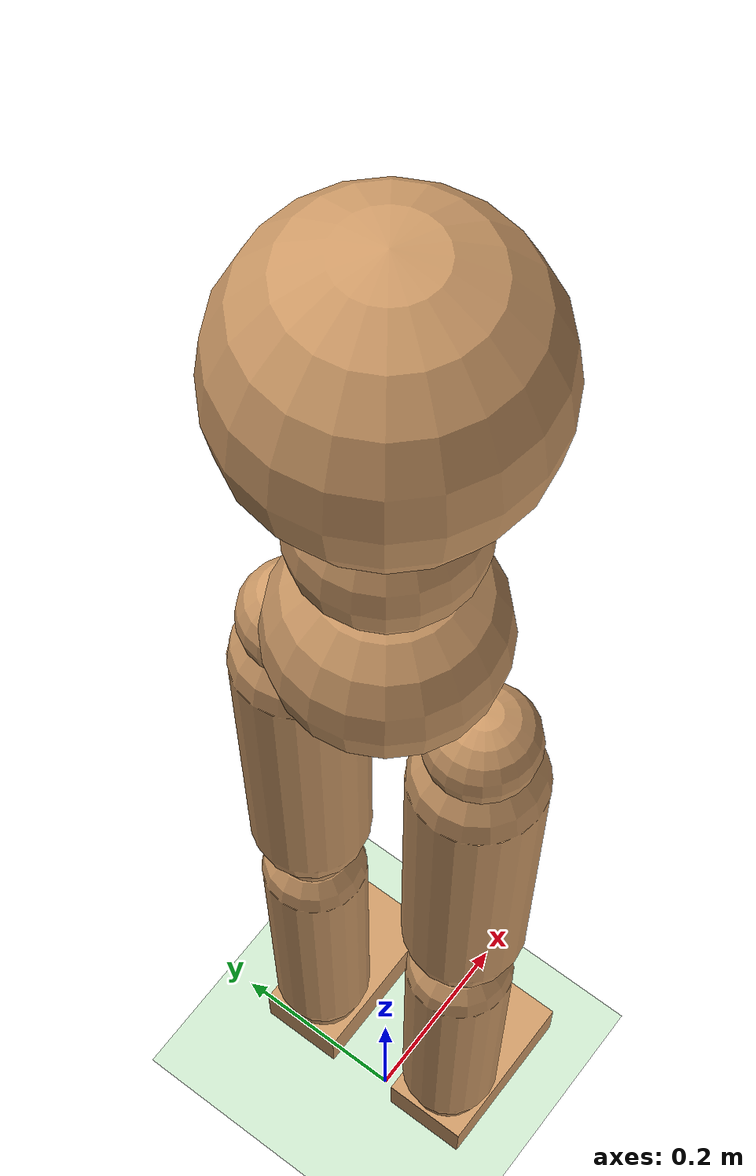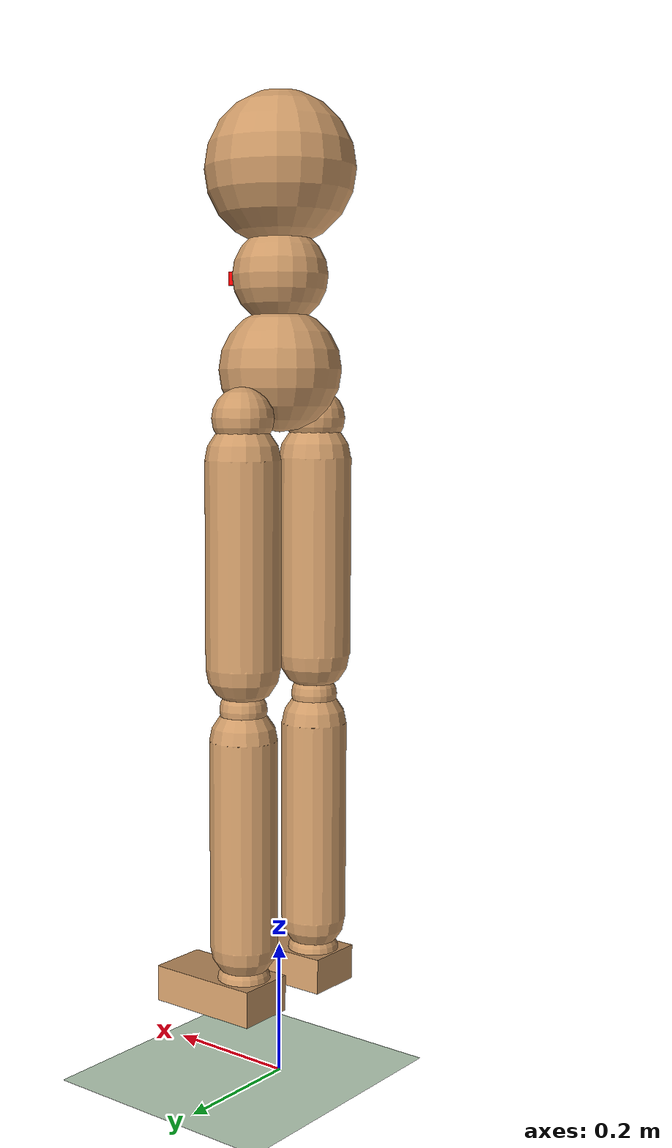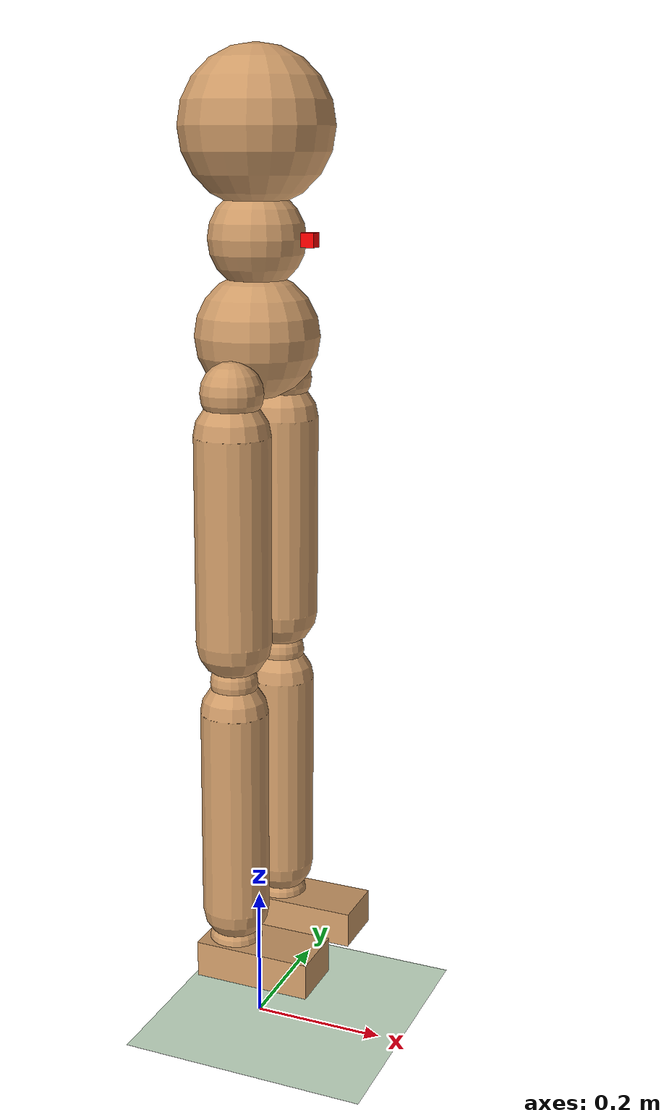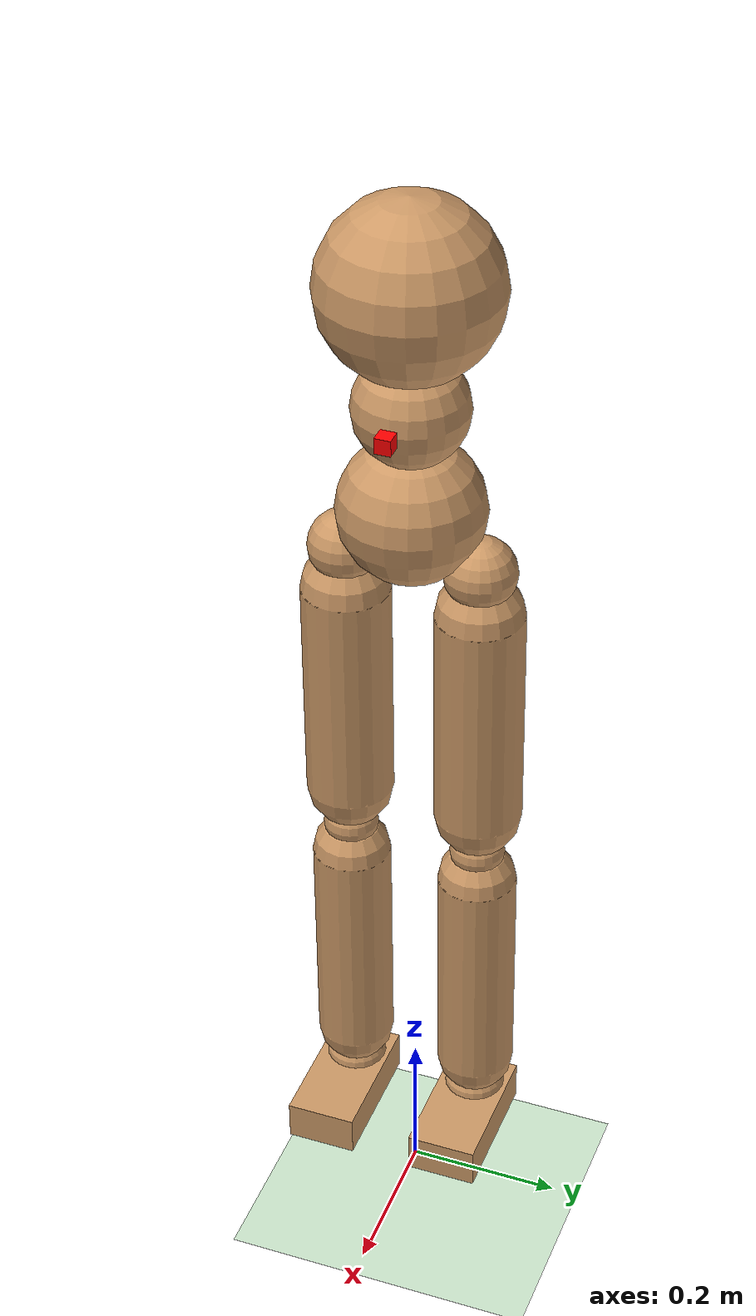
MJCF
<mujoco model="humanoid">
    <compiler angle="degree" inertiafromgeom="true"/>
    <default>
        <joint limited="true" armature="0" damping="0"/>
        <geom conaffinity="1" condim="1" contype="1" margin="0.001" material="geom" rgba="0.8 0.6 .4 1"/>
        <site material="geom" rgba="0.8 0.6 .4 1"/>
        <motor ctrllimited="true" ctrlrange="-.3 .3"/>
    </default>
    <option integrator="RK4" iterations="50" solver="PGS" timestep="0.003">
    </option>
    <size nkey="5" nuser_geom="1"/>
    <visual>
        <map fogend="5" fogstart="3"/>
    </visual>
    <asset>
        <texture builtin="gradient" height="100" rgb1=".4 .5 .6" rgb2="0 0 0" type="skybox" width="100"/>
        <texture builtin="flat" height="1278" mark="cross" markrgb="1 1 1" name="texgeom" random="0.01" rgb1="0.8 0.6 0.4" rgb2="0.8 0.6 0.4" type="cube" width="127"/>
        <texture builtin="checker" height="100" name="texplane" rgb1="0 0 0" rgb2="0.8 0.8 0.8" type="2d" width="100"/>
        <material name="MatPlane" reflectance="0.5" shininess="1" specular="1" texrepeat="60 60" texture="texplane"/>
        <material name="geom" texture="texgeom" texuniform="true"/>
    </asset>
    <worldbody>
        <light cutoff="100" diffuse="1 1 1" dir="-0 0 -1.3" directional="true" exponent="1" pos="0 0 1.3" specular=".1 .1 .1"/>
        <geom condim="3" friction="1 .1 .1" material="MatPlane" name="floor" pos="0 0 0" rgba="0.8 0.9 0.8 1" size="20 20 0.125" type="plane"/>
        <body name="root" pos="0 0 1">
            <camera name="track" mode="trackcom" pos="0 -4 0.7" xyaxes="1 0 0 0 0 1"/>
            <geom name="root" pos="0 0 0.07" size=".09" type="sphere"/>
            <site name="joint_waist" pos="0 0 0.205" size="0.07" type="sphere"/>
            <geom name="joint_front_x" rgba='1 0 0 1' pos="0.08 0 0.205" size="0.01 0.01 0.01" type="box"/>
            <body name="chest" pos="0 0 0.236151">
                <geom name="chest" pos="0 0 0.12" size=".11" type="sphere"/>
                <joint name="chest" pos="0 0 0" range="0 68.75" type="ball"/>
            </body>
            <body name="right_hip" pos="0 -0.084887 0">
                <geom fromto="0 0 -0.06 0 0 -0.36" name="right_hip" size="0.055" type="capsule"/>
                <site name="joint_right_hip" pos="0 0 0" size="0.045" type="sphere"/>
                <joint axis="1 0 0" name="right_hip_x" pos="0 0 0" range="-68.75 68.75" stiffness="0" type="hinge"/>
                <joint axis="0 1 0" name="right_hip_y" pos="0 0 0" range="-57.3 57.3"   stiffness="0" type="hinge"/>
                <joint axis="0 0 1" name="right_hip_z" pos="0 0 0" range="-90 147.25"   stiffness="0" type="hinge"/>
                <body name="right_knee" pos="0 0 -0.421546">
                    <geom fromto="0 0 -0.045 0 0 -0.355" name="right_knee" size="0.05" type="capsule"/>
                    <site name="joint_right_knee" pos="0 0 0" size="0.035" type="sphere"/>
                    <joint axis="0 -1 0" name="right_knee" pos="0 0 0" range="-150 0" stiffness="0" type="hinge"/>
                    <body name="right_ankle" pos="0 0 -0.40987">
                        <geom name="right_ankle" pos="0.045 0 -0.0225" size="0.088 0.045 0.027" type="box"/>
                        <site name="joint_right_ankle" pos="0 0 0" size="0.04" type="sphere"/>
                        <joint axis="1 0 0" name="right_ankle_x" pos="0 0 0" range="-57.3 57.3" stiffness="0" type="hinge"/>
                        <joint axis="0 1 0" name="right_ankle_y" pos="0 0 0" range="-57.3 57.3" stiffness="0" type="hinge"/>
                        <joint axis="0 0 1" name="right_ankle_z" pos="0 0 0" range="-90 90"     stiffness="0" type="hinge"/>
                    </body>
                </body>
            </body>
            <body name="left_hip" pos="0 0.084887 0">
                <geom fromto="0 0 -0.06 0 0 -0.36" name="left_hip" size="0.055" type="capsule"/>
                <site name="joint_left_hip" pos="0 0 0" size="0.045" type="sphere"/>
                <joint axis="1 0 0" name="left_hip_x" pos="0 0 0" range="-68.75 68.75" stiffness="0" type="hinge"/>
                <joint axis="0 1 0" name="left_hip_y" pos="0 0 0" range="-57.3 57.3"   stiffness="0" type="hinge"/>
                <joint axis="0 0 1" name="left_hip_z" pos="0 0 0" range="-90 147.25"   stiffness="0" type="hinge"/>
                <body name="left_knee" pos="0 0 -0.421546">
                    <geom fromto="0 0 -0.045 0 0 -0.355" name="left_knee" size="0.05" type="capsule"/>
                    <site name="joint_left_knee" pos="0 0 0" size="0.035" type="sphere"/>
                    <joint axis="0 -1 0" name="left_knee" pos="0 0 0" range="-150 0" stiffness="0" type="hinge"/>
                    <body name="left_ankle" pos="0 0 -0.40987">
                        <geom name="left_ankle" pos="0.045 0 -0.0225" size="0.088 0.045 0.027" type="box"/>
                        <joint axis="1 0 0" name="left_ankle_x" pos="0 0 0" range="-57.3 57.3" stiffness="0" type="hinge"/>
                        <joint axis="0 1 0" name="left_ankle_y" pos="0 0 0" range="-57.3 57.3" stiffness="0" type="hinge"/>
                        <joint axis="0 0 1" name="left_ankle_z" pos="0 0 0" range="-90 90"     stiffness="0" type="hinge"/>
                        <site name="joint_left_ankle" pos="0 0 0" size="0.04" type="sphere"/>
                    </body>
                </body>
            </body>
        </body>
    </worldbody>

    <actuator>
        <motor gear="1 0 0" joint="chest" name="chest_x"/>
        <motor gear="0 1 0" joint="chest" name="chest_y"/>
        <motor gear="0 0 1" joint="chest" name="chest_z"/>
    </actuator>
</mujoco>
